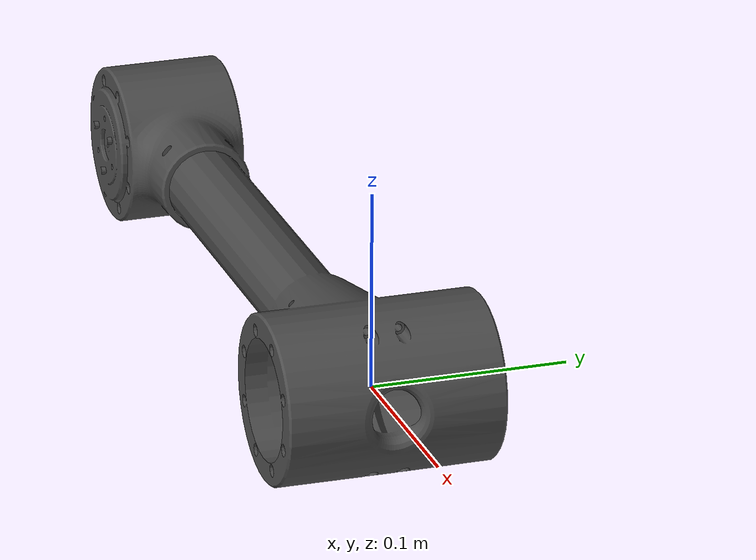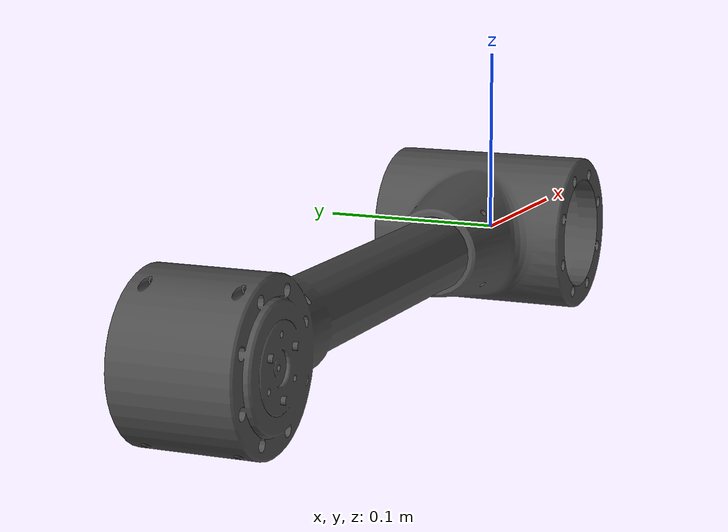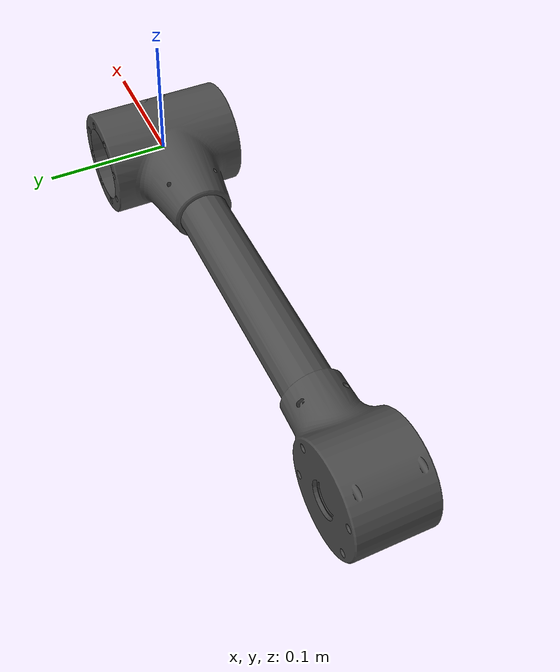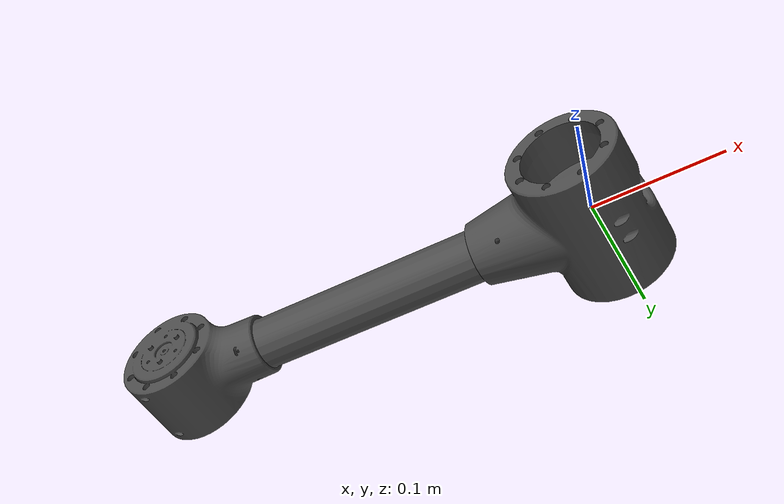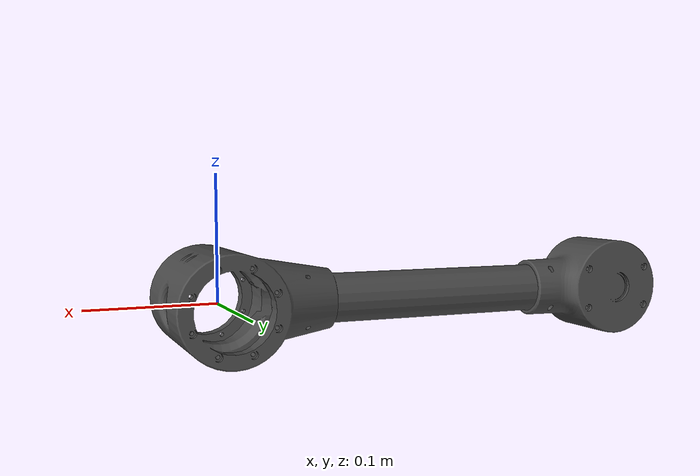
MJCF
<mujoco model="LINK2">
  <default>
    <default class="visual">
      <geom group="2" type="mesh" contype="0" conaffinity="0"/>
    </default>
    <default class="collision">
      <geom group="3" type="mesh"/>
    </default>
  </default>
  <asset>
    <material name="mtl_LINK2" specular="0.20000000000000004" shininess="1.0" rgba="0.29803922 0.29803922 0.29803922 1.0"/>
    <mesh file="LINK2.obj"/>
  </asset>
  <worldbody>
    <body name="LINK2">
      <geom material="mtl_LINK2" mesh="LINK2" class="visual"/>
      <geom mesh="LINK2" class="collision"/>
    </body>
  </worldbody>
</mujoco>
